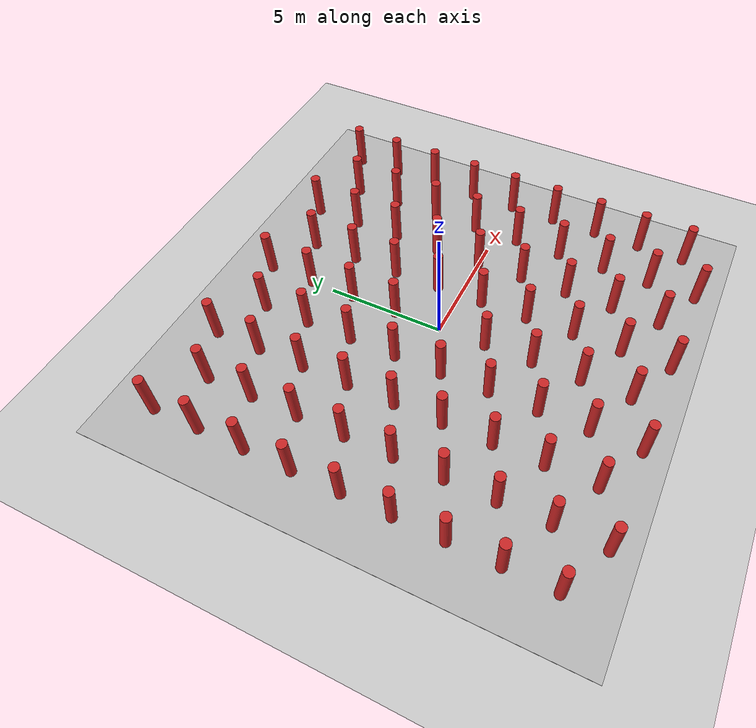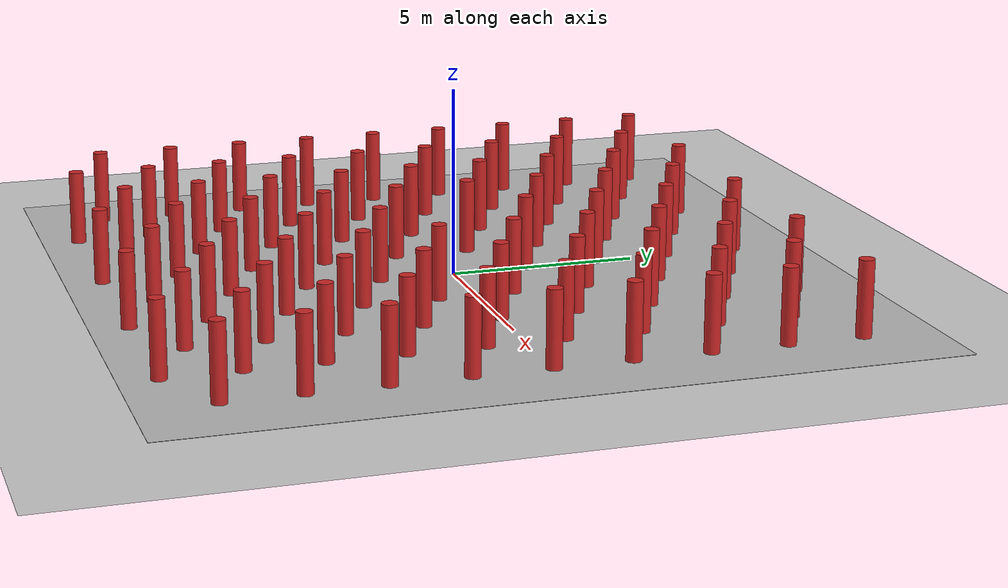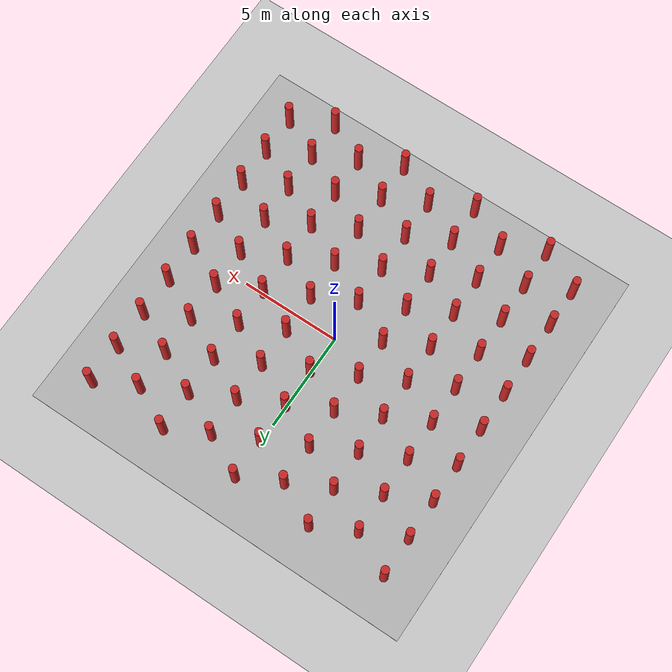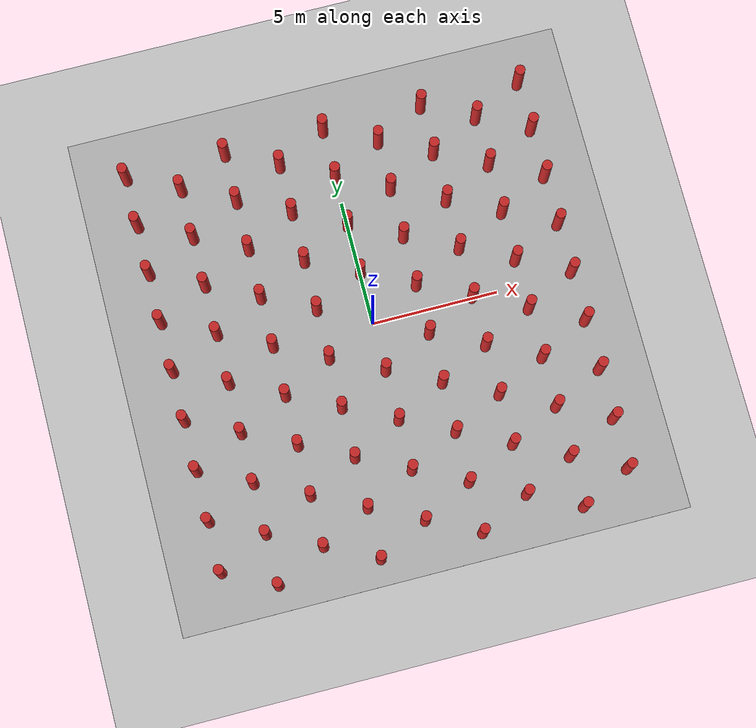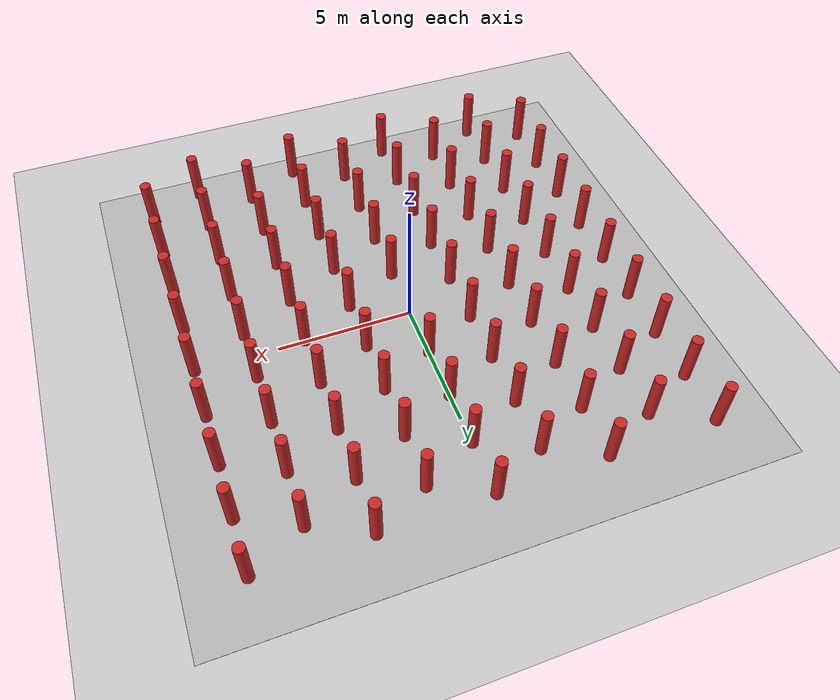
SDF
<?xml version="1.0"?>
<sdf version="1.6">
  <world name="planning_test">
    <!-- Physics Settings -->
    <physics type='ode'>
      <gravity>0 0 -9.8066</gravity>
      <ode>
        <solver>
          <type>quick</type>
          <iters>10</iters>
          <sor>1.3</sor>
          <use_dynamic_moi_rescaling>0</use_dynamic_moi_rescaling>
        </solver>
        <constraints>
          <cfm>0.00001</cfm>
          <erp>0.2</erp>
          <contact_max_correcting_vel>1000</contact_max_correcting_vel>
          <contact_surface_layer>0.01</contact_surface_layer>
        </constraints>
      </ode>
      <max_step_size>0.004</max_step_size>
      <real_time_factor>1.0</real_time_factor>
      <real_time_update_rate>250</real_time_update_rate>
      <magnetic_field>6.0e-6 2.3e-5 -4.2e-5</magnetic_field>
    </physics>

    <!-- Camera Settings -->
    <gui fullscreen='0'>
      <camera name='user_camera'>
        <pose>-13.0 0.0 12.0 0 0.75 0.0</pose>
        <view_controller>orbit</view_controller>
      </camera>
    </gui>

    <!-- Lighting -->
    <light type="directional" name="sun">
      <cast_shadows>false</cast_shadows>
      <pose>0 0 100 0 0 0</pose>
      <diffuse>0.8 0.8 0.8 1</diffuse>
      <specular>0.9 0.9 0.9 1</specular>
      <attenuation>
        <range>1000</range>
        <constant>0.9</constant>
        <linear>0.01</linear>
        <quadratic>0.001</quadratic>
      </attenuation>
      <direction>0.2 0.2 -0.9</direction>
    </light>

    <scene>
      <shadows>0</shadows>
    </scene>

    <!-- Ground Plane -->
    <include>
      <uri>model://ground_plane</uri>
    </include>

    <!-- Yundrone Logo -->
    <include>
      <uri>model://yundrone</uri>
      <name>yundrone</name>
      <pose>0 0 0 0 0 0</pose>
      <static>true</static>
    </include>

    <!-- ============== Cylinder Array ============== -->

    <include>
      <uri>model://cylinder_20cm</uri>
      <name>cylinder_-8_-8</name>
      <pose>-8.0 -8.0 1.0 0 0 0</pose>
      <static>true</static>
    </include>

    <include>
      <uri>model://cylinder_20cm</uri>
      <name>cylinder_-8_-6</name>
      <pose>-8.0 -6.0 1.0 0 0 0</pose>
      <static>true</static>
    </include>

    <include>
      <uri>model://cylinder_20cm</uri>
      <name>cylinder_-8_-4</name>
      <pose>-8.0 -4.0 1.0 0 0 0</pose>
      <static>true</static>
    </include>

    <include>
      <uri>model://cylinder_20cm</uri>
      <name>cylinder_-8_-2</name>
      <pose>-8.0 -2.0 1.0 0 0 0</pose>
      <static>true</static>
    </include>

    <include>
      <uri>model://cylinder_20cm</uri>
      <name>cylinder_-8_0</name>
      <pose>-8.0 0.0 1.0 0 0 0</pose>
      <static>true</static>
    </include>

    <include>
      <uri>model://cylinder_20cm</uri>
      <name>cylinder_-8_2</name>
      <pose>-8.0 2.0 1.0 0 0 0</pose>
      <static>true</static>
    </include>

    <include>
      <uri>model://cylinder_20cm</uri>
      <name>cylinder_-8_4</name>
      <pose>-8.0 4.0 1.0 0 0 0</pose>
      <static>true</static>
    </include>

    <include>
      <uri>model://cylinder_20cm</uri>
      <name>cylinder_-8_6</name>
      <pose>-8.0 6.0 1.0 0 0 0</pose>
      <static>true</static>
    </include>

    <include>
      <uri>model://cylinder_20cm</uri>
      <name>cylinder_-8_8</name>
      <pose>-8.0 8.0 1.0 0 0 0</pose>
      <static>true</static>
    </include>

    <include>
      <uri>model://cylinder_20cm_green</uri>
      <name>cylinder_-6_-9</name>
      <pose>-6.0 -9.0 1.0 0 0 0</pose>
      <static>true</static>
    </include>

    <include>
      <uri>model://cylinder_20cm_green</uri>
      <name>cylinder_-6_-7</name>
      <pose>-6.0 -7.0 1.0 0 0 0</pose>
      <static>true</static>
    </include>

    <include>
      <uri>model://cylinder_20cm_green</uri>
      <name>cylinder_-6_-5</name>
      <pose>-6.0 -5.0 1.0 0 0 0</pose>
      <static>true</static>
    </include>

    <include>
      <uri>model://cylinder_20cm_green</uri>
      <name>cylinder_-6_-3</name>
      <pose>-6.0 -3.0 1.0 0 0 0</pose>
      <static>true</static>
    </include>

    <include>
      <uri>model://cylinder_20cm_green</uri>
      <name>cylinder_-6_-1</name>
      <pose>-6.0 -1.0 1.0 0 0 0</pose>
      <static>true</static>
    </include>

    <include>
      <uri>model://cylinder_20cm_green</uri>
      <name>cylinder_-6_1</name>
      <pose>-6.0 1.0 1.0 0 0 0</pose>
      <static>true</static>
    </include>

    <include>
      <uri>model://cylinder_20cm_green</uri>
      <name>cylinder_-6_3</name>
      <pose>-6.0 3.0 1.0 0 0 0</pose>
      <static>true</static>
    </include>

    <include>
      <uri>model://cylinder_20cm_green</uri>
      <name>cylinder_-6_5</name>
      <pose>-6.0 5.0 1.0 0 0 0</pose>
      <static>true</static>
    </include>

    <include>
      <uri>model://cylinder_20cm_green</uri>
      <name>cylinder_-6_7</name>
      <pose>-6.0 7.0 1.0 0 0 0</pose>
      <static>true</static>
    </include>

    <include>
      <uri>model://cylinder_20cm</uri>
      <name>cylinder_-4_-8</name>
      <pose>-4.0 -8.0 1.0 0 0 0</pose>
      <static>true</static>
    </include>

    <include>
      <uri>model://cylinder_20cm</uri>
      <name>cylinder_-4_-6</name>
      <pose>-4.0 -6.0 1.0 0 0 0</pose>
      <static>true</static>
    </include>

    <include>
      <uri>model://cylinder_20cm</uri>
      <name>cylinder_-4_-4</name>
      <pose>-4.0 -4.0 1.0 0 0 0</pose>
      <static>true</static>
    </include>

    <include>
      <uri>model://cylinder_20cm</uri>
      <name>cylinder_-4_-2</name>
      <pose>-4.0 -2.0 1.0 0 0 0</pose>
      <static>true</static>
    </include>

    <include>
      <uri>model://cylinder_20cm</uri>
      <name>cylinder_-4_0</name>
      <pose>-4.0 0.0 1.0 0 0 0</pose>
      <static>true</static>
    </include>

    <include>
      <uri>model://cylinder_20cm</uri>
      <name>cylinder_-4_2</name>
      <pose>-4.0 2.0 1.0 0 0 0</pose>
      <static>true</static>
    </include>

    <include>
      <uri>model://cylinder_20cm</uri>
      <name>cylinder_-4_4</name>
      <pose>-4.0 4.0 1.0 0 0 0</pose>
      <static>true</static>
    </include>

    <include>
      <uri>model://cylinder_20cm</uri>
      <name>cylinder_-4_6</name>
      <pose>-4.0 6.0 1.0 0 0 0</pose>
      <static>true</static>
    </include>

    <include>
      <uri>model://cylinder_20cm</uri>
      <name>cylinder_-4_8</name>
      <pose>-4.0 8.0 1.0 0 0 0</pose>
      <static>true</static>
    </include>

    <include>
      <uri>model://cylinder_20cm_green</uri>
      <name>cylinder_-2_-9</name>
      <pose>-2.0 -9.0 1.0 0 0 0</pose>
      <static>true</static>
    </include>

    <include>
      <uri>model://cylinder_20cm_green</uri>
      <name>cylinder_-2_-7</name>
      <pose>-2.0 -7.0 1.0 0 0 0</pose>
      <static>true</static>
    </include>

    <include>
      <uri>model://cylinder_20cm_green</uri>
      <name>cylinder_-2_-5</name>
      <pose>-2.0 -5.0 1.0 0 0 0</pose>
      <static>true</static>
    </include>

    <include>
      <uri>model://cylinder_20cm_green</uri>
      <name>cylinder_-2_-3</name>
      <pose>-2.0 -3.0 1.0 0 0 0</pose>
      <static>true</static>
    </include>

    <include>
      <uri>model://cylinder_20cm_green</uri>
      <name>cylinder_-2_-1</name>
      <pose>-2.0 -1.0 1.0 0 0 0</pose>
      <static>true</static>
    </include>

    <include>
      <uri>model://cylinder_20cm_green</uri>
      <name>cylinder_-2_1</name>
      <pose>-2.0 1.0 1.0 0 0 0</pose>
      <static>true</static>
    </include>

    <include>
      <uri>model://cylinder_20cm_green</uri>
      <name>cylinder_-2_3</name>
      <pose>-2.0 3.0 1.0 0 0 0</pose>
      <static>true</static>
    </include>

    <include>
      <uri>model://cylinder_20cm_green</uri>
      <name>cylinder_-2_5</name>
      <pose>-2.0 5.0 1.0 0 0 0</pose>
      <static>true</static>
    </include>

    <include>
      <uri>model://cylinder_20cm_green</uri>
      <name>cylinder_-2_7</name>
      <pose>-2.0 7.0 1.0 0 0 0</pose>
      <static>true</static>
    </include>

    <include>
      <uri>model://cylinder_20cm</uri>
      <name>cylinder_0_-8</name>
      <pose>0.0 -8.0 1.0 0 0 0</pose>
      <static>true</static>
    </include>

    <include>
      <uri>model://cylinder_20cm</uri>
      <name>cylinder_0_-6</name>
      <pose>0.0 -6.0 1.0 0 0 0</pose>
      <static>true</static>
    </include>

    <include>
      <uri>model://cylinder_20cm</uri>
      <name>cylinder_0_-4</name>
      <pose>0.0 -4.0 1.0 0 0 0</pose>
      <static>true</static>
    </include>

    <include>
      <uri>model://cylinder_20cm</uri>
      <name>cylinder_0_-2</name>
      <pose>0.0 -2.0 1.0 0 0 0</pose>
      <static>true</static>
    </include>

    <include>
      <uri>model://cylinder_20cm</uri>
      <name>cylinder_0_2</name>
      <pose>0.0 2.0 1.0 0 0 0</pose>
      <static>true</static>
    </include>

    <include>
      <uri>model://cylinder_20cm</uri>
      <name>cylinder_0_4</name>
      <pose>0.0 4.0 1.0 0 0 0</pose>
      <static>true</static>
    </include>

    <include>
      <uri>model://cylinder_20cm</uri>
      <name>cylinder_0_6</name>
      <pose>0.0 6.0 1.0 0 0 0</pose>
      <static>true</static>
    </include>

    <include>
      <uri>model://cylinder_20cm</uri>
      <name>cylinder_0_8</name>
      <pose>0.0 8.0 1.0 0 0 0</pose>
      <static>true</static>
    </include>

    <include>
      <uri>model://cylinder_20cm_green</uri>
      <name>cylinder_2_-9</name>
      <pose>2.0 -9.0 1.0 0 0 0</pose>
      <static>true</static>
    </include>

    <include>
      <uri>model://cylinder_20cm_green</uri>
      <name>cylinder_2_-7</name>
      <pose>2.0 -7.0 1.0 0 0 0</pose>
      <static>true</static>
    </include>

    <include>
      <uri>model://cylinder_20cm_green</uri>
      <name>cylinder_2_-5</name>
      <pose>2.0 -5.0 1.0 0 0 0</pose>
      <static>true</static>
    </include>

    <include>
      <uri>model://cylinder_20cm_green</uri>
      <name>cylinder_2_-3</name>
      <pose>2.0 -3.0 1.0 0 0 0</pose>
      <static>true</static>
    </include>

    <include>
      <uri>model://cylinder_20cm_green</uri>
      <name>cylinder_2_-1</name>
      <pose>2.0 -1.0 1.0 0 0 0</pose>
      <static>true</static>
    </include>

    <include>
      <uri>model://cylinder_20cm_green</uri>
      <name>cylinder_2_1</name>
      <pose>2.0 1.0 1.0 0 0 0</pose>
      <static>true</static>
    </include>

    <include>
      <uri>model://cylinder_20cm_green</uri>
      <name>cylinder_2_3</name>
      <pose>2.0 3.0 1.0 0 0 0</pose>
      <static>true</static>
    </include>

    <include>
      <uri>model://cylinder_20cm_green</uri>
      <name>cylinder_2_5</name>
      <pose>2.0 5.0 1.0 0 0 0</pose>
      <static>true</static>
    </include>

    <include>
      <uri>model://cylinder_20cm_green</uri>
      <name>cylinder_2_7</name>
      <pose>2.0 7.0 1.0 0 0 0</pose>
      <static>true</static>
    </include>

    <include>
      <uri>model://cylinder_20cm</uri>
      <name>cylinder_4_-8</name>
      <pose>4.0 -8.0 1.0 0 0 0</pose>
      <static>true</static>
    </include>

    <include>
      <uri>model://cylinder_20cm</uri>
      <name>cylinder_4_-6</name>
      <pose>4.0 -6.0 1.0 0 0 0</pose>
      <static>true</static>
    </include>

    <include>
      <uri>model://cylinder_20cm</uri>
      <name>cylinder_4_-4</name>
      <pose>4.0 -4.0 1.0 0 0 0</pose>
      <static>true</static>
    </include>

    <include>
      <uri>model://cylinder_20cm</uri>
      <name>cylinder_4_-2</name>
      <pose>4.0 -2.0 1.0 0 0 0</pose>
      <static>true</static>
    </include>

    <include>
      <uri>model://cylinder_20cm</uri>
      <name>cylinder_4_0</name>
      <pose>4.0 0.0 1.0 0 0 0</pose>
      <static>true</static>
    </include>

    <include>
      <uri>model://cylinder_20cm</uri>
      <name>cylinder_4_2</name>
      <pose>4.0 2.0 1.0 0 0 0</pose>
      <static>true</static>
    </include>

    <include>
      <uri>model://cylinder_20cm</uri>
      <name>cylinder_4_4</name>
      <pose>4.0 4.0 1.0 0 0 0</pose>
      <static>true</static>
    </include>

    <include>
      <uri>model://cylinder_20cm</uri>
      <name>cylinder_4_6</name>
      <pose>4.0 6.0 1.0 0 0 0</pose>
      <static>true</static>
    </include>

    <include>
      <uri>model://cylinder_20cm</uri>
      <name>cylinder_4_8</name>
      <pose>4.0 8.0 1.0 0 0 0</pose>
      <static>true</static>
    </include>

    <include>
      <uri>model://cylinder_20cm_green</uri>
      <name>cylinder_6_-9</name>
      <pose>6.0 -9.0 1.0 0 0 0</pose>
      <static>true</static>
    </include>

    <include>
      <uri>model://cylinder_20cm_green</uri>
      <name>cylinder_6_-7</name>
      <pose>6.0 -7.0 1.0 0 0 0</pose>
      <static>true</static>
    </include>

    <include>
      <uri>model://cylinder_20cm_green</uri>
      <name>cylinder_6_-5</name>
      <pose>6.0 -5.0 1.0 0 0 0</pose>
      <static>true</static>
    </include>

    <include>
      <uri>model://cylinder_20cm_green</uri>
      <name>cylinder_6_-3</name>
      <pose>6.0 -3.0 1.0 0 0 0</pose>
      <static>true</static>
    </include>

    <include>
      <uri>model://cylinder_20cm_green</uri>
      <name>cylinder_6_-1</name>
      <pose>6.0 -1.0 1.0 0 0 0</pose>
      <static>true</static>
    </include>

    <include>
      <uri>model://cylinder_20cm_green</uri>
      <name>cylinder_6_1</name>
      <pose>6.0 1.0 1.0 0 0 0</pose>
      <static>true</static>
    </include>

    <include>
      <uri>model://cylinder_20cm_green</uri>
      <name>cylinder_6_3</name>
      <pose>6.0 3.0 1.0 0 0 0</pose>
      <static>true</static>
    </include>

    <include>
      <uri>model://cylinder_20cm_green</uri>
      <name>cylinder_6_5</name>
      <pose>6.0 5.0 1.0 0 0 0</pose>
      <static>true</static>
    </include>

    <include>
      <uri>model://cylinder_20cm_green</uri>
      <name>cylinder_6_7</name>
      <pose>6.0 7.0 1.0 0 0 0</pose>
      <static>true</static>
    </include>

    <include>
      <uri>model://cylinder_20cm</uri>
      <name>cylinder_8_-8</name>
      <pose>8.0 -8.0 1.0 0 0 0</pose>
      <static>true</static>
    </include>

    <include>
      <uri>model://cylinder_20cm</uri>
      <name>cylinder_8_-6</name>
      <pose>8.0 -6.0 1.0 0 0 0</pose>
      <static>true</static>
    </include>

    <include>
      <uri>model://cylinder_20cm</uri>
      <name>cylinder_8_-4</name>
      <pose>8.0 -4.0 1.0 0 0 0</pose>
      <static>true</static>
    </include>

    <include>
      <uri>model://cylinder_20cm</uri>
      <name>cylinder_8_-2</name>
      <pose>8.0 -2.0 1.0 0 0 0</pose>
      <static>true</static>
    </include>

    <include>
      <uri>model://cylinder_20cm</uri>
      <name>cylinder_8_0</name>
      <pose>8.0 0.0 1.0 0 0 0</pose>
      <static>true</static>
    </include>

    <include>
      <uri>model://cylinder_20cm</uri>
      <name>cylinder_8_2</name>
      <pose>8.0 2.0 1.0 0 0 0</pose>
      <static>true</static>
    </include>

    <include>
      <uri>model://cylinder_20cm</uri>
      <name>cylinder_8_4</name>
      <pose>8.0 4.0 1.0 0 0 0</pose>
      <static>true</static>
    </include>

    <include>
      <uri>model://cylinder_20cm</uri>
      <name>cylinder_8_6</name>
      <pose>8.0 6.0 1.0 0 0 0</pose>
      <static>true</static>
    </include>

    <include>
      <uri>model://cylinder_20cm</uri>
      <name>cylinder_8_8</name>
      <pose>8.0 8.0 1.0 0 0 0</pose>
      <static>true</static>
    </include>
  </world>
</sdf>

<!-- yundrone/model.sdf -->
<sdf version="1.5">
    <model name='yundrone'>
      <static>true</static>
      <link name="yundrone">
        <pose frame=''> 0.0 0.0 0.0 0.0 0.0 0.0</pose>
        <visual name="visual">
            <cast_shadows>false</cast_shadows>
            <geometry>
              <box>
                <size>20.0 20.0 0.01</size>
              </box>
            </geometry>
            <material>
              <script>
                <uri>model://yundrone_logo/yundrone_logo.material</uri>
                <name>yundrone_logo</name>
              </script>
            </material>
        </visual>
      </link>
    </model>
</sdf>

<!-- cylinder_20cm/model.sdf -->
<sdf version="1.7">
  <model name="cylinder_20cm">
    <link name="link">
      <!-- 视觉属性 -->
      <visual name="visual">
        <geometry>
          <cylinder>
            <radius>0.2</radius>
            <length>2</length>
          </cylinder>
        </geometry>
        <material>
          <!-- 使用Gazebo预置红色材质 -->
          <script>
            <uri>file://media/materials/scripts/gazebo.material</uri>
            <name>Gazebo/Red</name>
          </script>
          <!-- 或直接使用RGBA值 -->
        </material>
      </visual>

      <!-- 碰撞属性 -->
      <collision name="collision">
        <geometry>
          <cylinder>
            <radius>0.2</radius>
            <length>2</length>
          </cylinder>
        </geometry>
      </collision>

      <!-- 物理属性 -->
      <inertial>
        <mass>1</mass>  <!-- 质量设为1kg -->
        <inertia>
          <!-- 圆柱体惯性矩阵（基于质量1kg计算） -->
          <ixx>0.3358</ixx>
          <ixy>0</ixy>
          <ixz>0</ixz>
          <iyy>0.3358</iyy>
          <iyz>0</iyz>
          <izz>0.005</izz>
        </inertia>
      </inertial>
    </link>
  </model>
</sdf>

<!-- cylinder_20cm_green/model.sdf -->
<sdf version="1.7">
  <model name="cylinder_20cm_green">
    <link name="link">
      <!-- 视觉属性 -->
      <visual name="visual">
        <geometry>
          <cylinder>
            <radius>0.2</radius>
            <length>2</length>
          </cylinder>
        </geometry>
        <material>
          <!-- 使用Gazebo预置红色材质 -->
          <script>
            <uri>file://media/materials/scripts/gazebo.material</uri>
            <name>Gazebo/Red</name>
          </script>
          <!-- 或直接使用RGBA值 -->
        </material>
      </visual>

      <!-- 碰撞属性 -->
      <collision name="collision">
        <geometry>
          <cylinder>
            <radius>0.2</radius>
            <length>2</length>
          </cylinder>
        </geometry>
      </collision>

      <!-- 物理属性 -->
      <inertial>
        <mass>1</mass>  <!-- 质量设为1kg -->
        <inertia>
          <!-- 圆柱体惯性矩阵（基于质量1kg计算） -->
          <ixx>0.3358</ixx>
          <ixy>0</ixy>
          <ixz>0</ixz>
          <iyy>0.3358</iyy>
          <iyz>0</iyz>
          <izz>0.005</izz>
        </inertia>
      </inertial>
    </link>
  </model>
</sdf>
